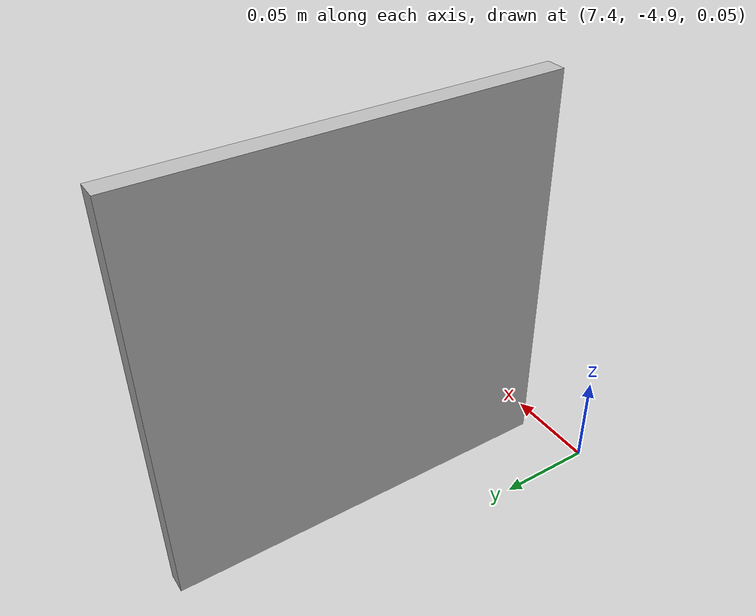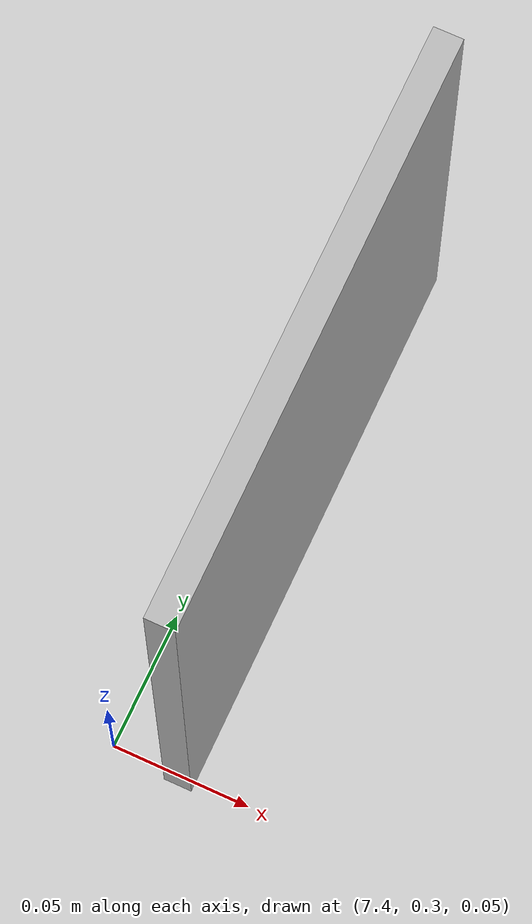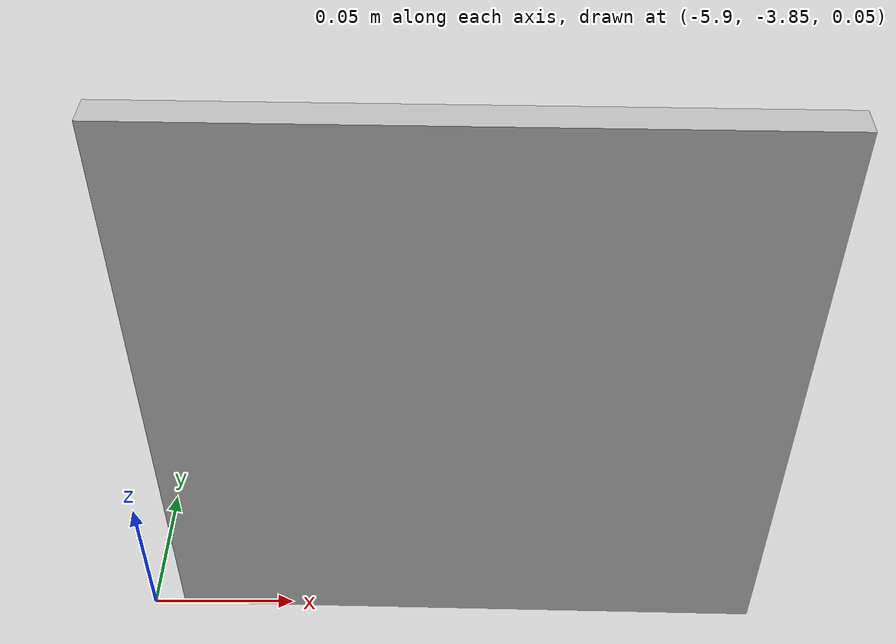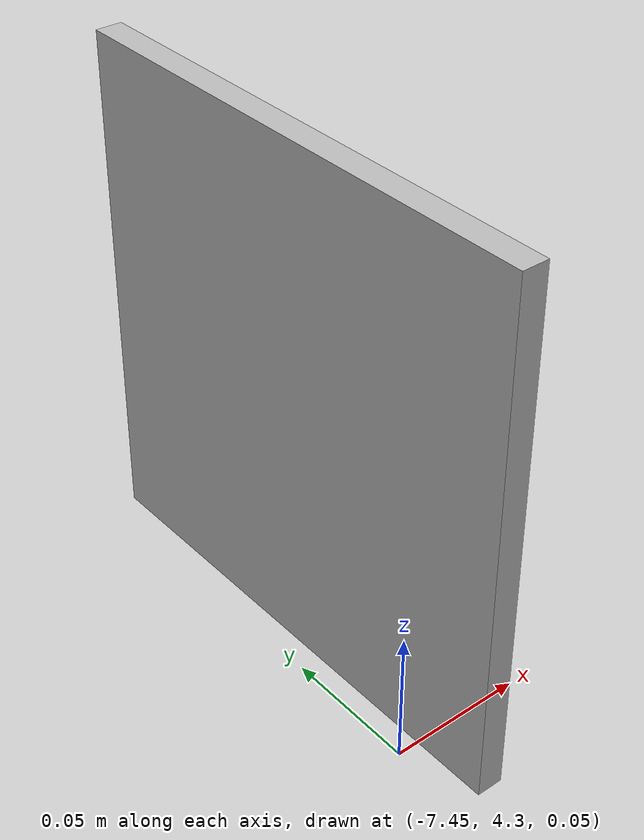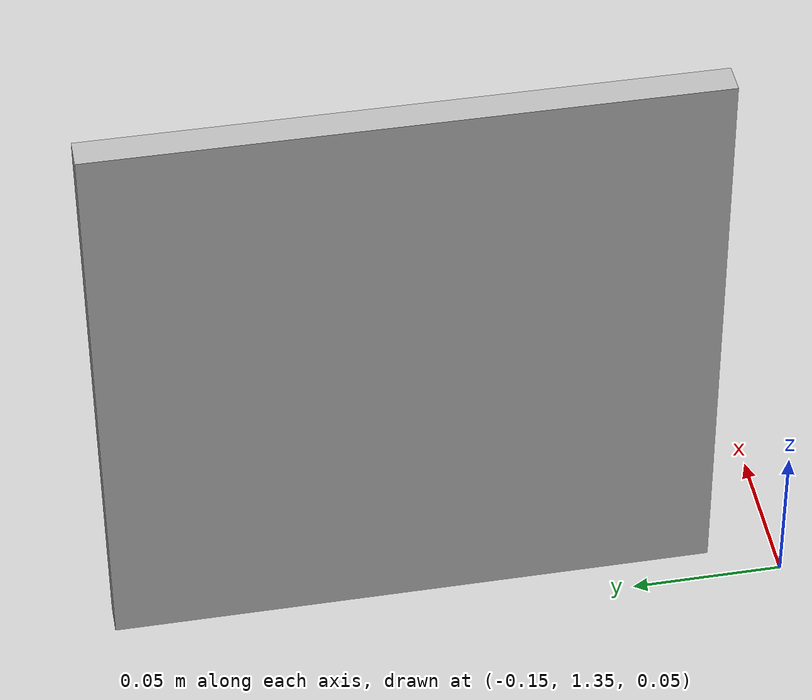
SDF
<sdf version="1.7">
 <world name="default">
  <light name="sun" type="directional">
   <pose>0 0 10 0 -0 0</pose>
   <diffuse>0.8 0.8 0.8 1</diffuse>
   <specular>0.2 0.2 0.2 1</specular>
   <attenuation>
    <range>1000</range>
    <constant>0.9</constant>
    <linear>0.01</linear>
    <quadratic>0.001</quadratic>
   </attenuation>
   <direction>-0.5 0.1 -0.9</direction>
   <spot><inner_angle>0</inner_angle><outer_angle>0</outer_angle><falloff>0</falloff></spot>
  </light>
  <model name="ground_plane">
   <static>1</static>
   <link name="link">
    <collision name="collision">
     <geometry><plane><normal>0 0 1</normal><size>100 100</size></plane></geometry>
     <surface>
      <contact><collide_bitmask>65535</collide_bitmask></contact>
      <friction><ode><mu>100</mu><mu2>50</mu2></ode></friction>
     </surface>
    </collision>
    <visual name="visual">
     <cast_shadows>0</cast_shadows>
     <geometry><plane><normal>0 0 1</normal><size>100 100</size></plane></geometry>
     <material>
      <script><uri>file://media/materials/scripts/gazebo.material</uri><name>Gazebo/Grey</name></script>
     </material>
    </visual>
   </link>
  </model>
  <physics type="ode">
   <real_time_update_rate>1000</real_time_update_rate>
   <max_step_size>0.001</max_step_size>
   <real_time_factor>1</real_time_factor>
   <ode>
    <solver>
     <type>quick</type>
     <iters>150</iters>
     <precon_iters>0</precon_iters>
     <sor>1.4</sor>
     <use_dynamic_moi_rescaling>1</use_dynamic_moi_rescaling>
    </solver>
    <constraints>
     <cfm>1e-05</cfm>
     <erp>0.2</erp>
     <contact_max_correcting_vel>2000</contact_max_correcting_vel>
     <contact_surface_layer>0.01</contact_surface_layer>
    </constraints>
   </ode>
  </physics>
  <gravity>0 0 -9.8</gravity>
  <magnetic_field>6e-06 2.3e-05 -4.2e-05</magnetic_field>
  <atmosphere type="adiabatic"/>
  <scene><ambient>0.4 0.4 0.4 1</ambient><background>0.7 0.7 0.7 1</background><shadows>1</shadows></scene>
  <spherical_coordinates>
   <surface_model>EARTH_WGS84</surface_model>
   <latitude_deg>0</latitude_deg>
   <longitude_deg>0</longitude_deg>
   <elevation>0</elevation>
   <heading_deg>0</heading_deg>
  </spherical_coordinates>
  <model name="qr_cocuk_odasi">
   <static>1</static>
   <link name="link">
    <collision name="collision"><geometry><box><size>0.01 0.2 0.2</size></box></geometry></collision>
    <visual name="visual">
     <geometry><box><size>0.01 0.2 0.2</size></box></geometry>
     <material>
      <script>
       <uri>model://qr_cocuk_odasi/materials/scripts</uri>
       <uri>model://qr_cocuk_odasi/materials/textures</uri>
       <name>QR_Çocuk_Odası/Diffuse</name>
      </script>
     </material>
    </visual>
   </link>
   <pose>7.42644 -4.77579 0.168255 0 -0 0</pose>
  </model>
  <model name="qr_koridor">
   <static>1</static>
   <link name="link">
    <collision name="collision"><geometry><box><size>0.01 0.2 0.2</size></box></geometry></collision>
    <visual name="visual">
     <geometry><box><size>0.01 0.2 0.2</size></box></geometry>
     <material>
      <script>
       <uri>model://qr_koridor/materials/scripts</uri>
       <uri>model://qr_koridor/materials/textures</uri>
       <name>QR_Koridor/Diffuse</name>
      </script>
     </material>
    </visual>
   </link>
   <pose>-0.12984 1.47107 0.145634 0 -0 0</pose>
  </model>
  <model name="qr_mutfak">
   <static>1</static>
   <link name="link">
    <collision name="collision"><geometry><box><size>0.01 0.2 0.2</size></box></geometry></collision>
    <visual name="visual">
     <geometry><box><size>0.01 0.2 0.2</size></box></geometry>
     <material>
      <script>
       <uri>model://qr_mutfak/materials/scripts</uri>
       <uri>model://qr_mutfak/materials/textures</uri>
       <name>QR_Mutfak/Diffuse</name>
      </script>
     </material>
    </visual>
   </link>
   <pose>-5.7873 -3.85248 0.157167 0 0 -1.58782</pose>
  </model>
  <model name="qr_salon">
   <static>1</static>
   <link name="link">
    <collision name="collision"><geometry><box><size>0.01 0.2 0.2</size></box></geometry></collision>
    <visual name="visual">
     <geometry><box><size>0.01 0.2 0.2</size></box></geometry>
     <material>
      <script>
       <uri>model://qr_salon/materials/scripts</uri>
       <uri>model://qr_salon/materials/textures</uri>
       <name>QR_Salon/Diffuse</name>
      </script>
     </material>
    </visual>
   </link>
   <pose>7.42701 0.394001 0.164737 0 -0 0</pose>
  </model>
  <model name="qr_yatak_odasi">
   <static>1</static>
   <link name="link">
    <collision name="collision"><geometry><box><size>0.01 0.2 0.2</size></box></geometry></collision>
    <visual name="visual">
     <geometry><box><size>0.01 0.2 0.2</size></box></geometry>
     <material>
      <script>
       <uri>model://qr_yatak_odasi/materials/scripts</uri>
       <uri>model://qr_yatak_odasi/materials/textures</uri>
       <name>QR_Yatak_Odası/Diffuse</name>
      </script>
     </material>
    </visual>
   </link>
   <pose>-7.42624 4.38126 0.133262 0 -0 0</pose>
  </model>
 </world>
</sdf>
